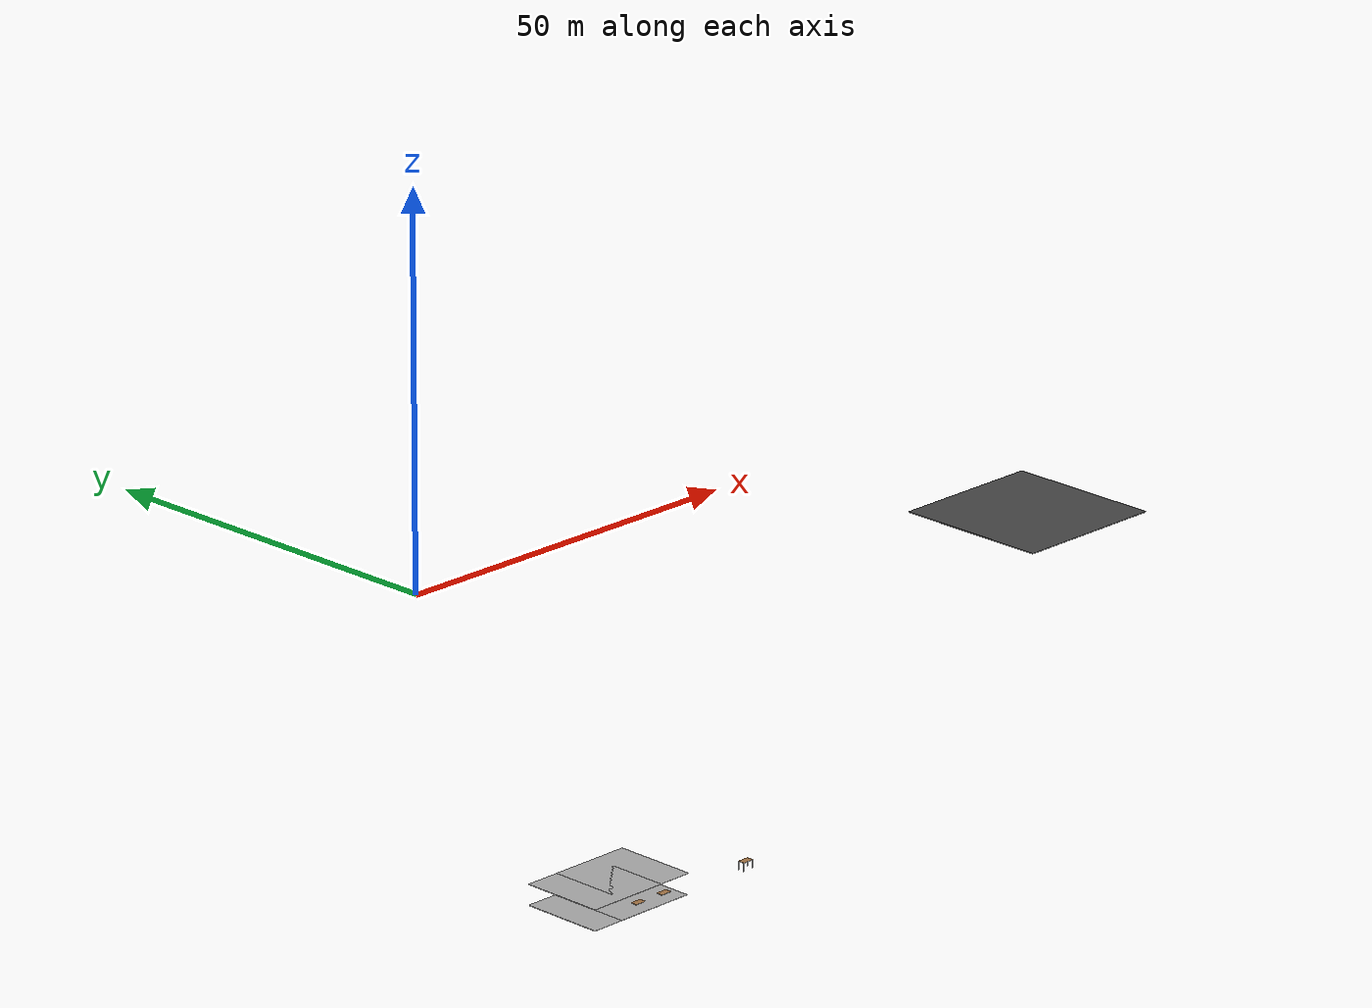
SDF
<sdf version="1.6">
 <world name="default">
  <model name="asphalt_plane">
   <static>1</static>
   <link name="link">
    <collision name="collision"><geometry><box><size>20 20 0.1</size></box></geometry></collision>
    <visual name="visual">
     <cast_shadows>0</cast_shadows>
     <geometry><box><size>20 20 0.1</size></box></geometry>
     <material>
      <script>
       <uri>model://asphalt_plane/materials/scripts</uri>
       <uri>model://asphalt_plane/materials/textures</uri>
       <name>vrc/asphalt</name>
      </script>
     </material>
    </visual>
   </link>
   <pose>70.7475 -31.5972 0 0 -0 0</pose>
  </model>
  <model name="table_4">
   <static>0</static>
   <link name="link">
    <collision name="surface">
     <pose>0 0 1 0 -0 0</pose>
     <geometry><box><size>1.5 0.8 0.03</size></box></geometry>
     <surface><friction><ode><mu>0.6</mu><mu2>0.6</mu2></ode></friction></surface>
    </collision>
    <visual name="visual1">
     <pose>0 0 1 0 -0 0</pose>
     <geometry><box><size>1.4 0.8 0.04</size></box></geometry>
     <material>
      <script><uri>file://media/materials/scripts/gazebo.material</uri><name>Gazebo/Wood</name></script>
     </material>
    </visual>
    <collision name="front_left_leg">
     <pose>0.68 0.38 0.5 0 -0 0</pose>
     <geometry><cylinder><radius>0.02</radius><length>1</length></cylinder></geometry>
    </collision>
    <visual name="front_left_leg">
     <pose>0.68 0.38 0.5 0 -0 0</pose>
     <geometry><cylinder><radius>0.02</radius><length>1</length></cylinder></geometry>
     <material>
      <script>
       <uri>model://office_env/materials/scripts</uri>
       <uri>model://office_env/materials/textures</uri>
       <name>wall</name>
      </script>
     </material>
    </visual>
    <collision name="front_right_leg">
     <pose>0.68 -0.38 0.5 0 -0 0</pose>
     <geometry><cylinder><radius>0.02</radius><length>1</length></cylinder></geometry>
    </collision>
    <visual name="front_right_leg">
     <pose>0.68 -0.38 0.5 0 -0 0</pose>
     <geometry><cylinder><radius>0.02</radius><length>1</length></cylinder></geometry>
     <material>
      <script>
       <uri>model://office_env/materials/scripts</uri>
       <uri>model://office_env/materials/textures</uri>
       <name>wall</name>
      </script>
     </material>
    </visual>
    <collision name="back_right_leg">
     <pose>-0.68 -0.38 0.5 0 -0 0</pose>
     <geometry><cylinder><radius>0.02</radius><length>1</length></cylinder></geometry>
    </collision>
    <visual name="back_right_leg">
     <pose>-0.68 -0.38 0.5 0 -0 0</pose>
     <geometry><cylinder><radius>0.02</radius><length>1</length></cylinder></geometry>
     <material>
      <script>
       <uri>model://office_env/materials/scripts</uri>
       <uri>model://office_env/materials/textures</uri>
       <name>wall</name>
      </script>
     </material>
    </visual>
    <collision name="back_left_leg">
     <pose>-0.68 0.38 0.5 0 -0 0</pose>
     <geometry><cylinder><radius>0.02</radius><length>1</length></cylinder></geometry>
    </collision>
    <visual name="back_left_leg">
     <pose>-0.68 0.38 0.5 0 -0 0</pose>
     <geometry><cylinder><radius>0.02</radius><length>1</length></cylinder></geometry>
     <material>
      <script>
       <uri>model://office_env/materials/scripts</uri>
       <uri>model://office_env/materials/textures</uri>
       <name>wall</name>
      </script>
     </material>
    </visual>
    <inertial>
     <inertia><ixx>1</ixx><ixy>0</ixy><ixz>0</ixz><iyy>1</iyy><iyz>0</iyz><izz>1</izz></inertia>
     <mass>1</mass>
    </inertial>
   </link>
   <pose>-32.5002 -84.6276 0.034993 -2e-06 3e-06 0</pose>
  </model>
  <model name="table_8">
   <static>0</static>
   <link name="link">
    <collision name="surface">
     <pose>0 0 1 0 -0 0</pose>
     <geometry><box><size>1.5 0.8 0.03</size></box></geometry>
     <surface><friction><ode><mu>0.6</mu><mu2>0.6</mu2></ode></friction></surface>
    </collision>
    <visual name="visual1">
     <pose>0 0 1 0 -0 0</pose>
     <geometry><box><size>1.4 0.8 0.04</size></box></geometry>
     <material>
      <script><uri>file://media/materials/scripts/gazebo.material</uri><name>Gazebo/Wood</name></script>
     </material>
    </visual>
    <collision name="front_left_leg">
     <pose>0.68 0.38 0.5 0 -0 0</pose>
     <geometry><cylinder><radius>0.02</radius><length>1</length></cylinder></geometry>
    </collision>
    <visual name="front_left_leg">
     <pose>0.68 0.38 0.5 0 -0 0</pose>
     <geometry><cylinder><radius>0.02</radius><length>1</length></cylinder></geometry>
     <material>
      <script>
       <uri>model://office_env/materials/scripts</uri>
       <uri>model://office_env/materials/textures</uri>
       <name>wall</name>
      </script>
     </material>
    </visual>
    <collision name="front_right_leg">
     <pose>0.68 -0.38 0.5 0 -0 0</pose>
     <geometry><cylinder><radius>0.02</radius><length>1</length></cylinder></geometry>
    </collision>
    <visual name="front_right_leg">
     <pose>0.68 -0.38 0.5 0 -0 0</pose>
     <geometry><cylinder><radius>0.02</radius><length>1</length></cylinder></geometry>
     <material>
      <script>
       <uri>model://office_env/materials/scripts</uri>
       <uri>model://office_env/materials/textures</uri>
       <name>wall</name>
      </script>
     </material>
    </visual>
    <collision name="back_right_leg">
     <pose>-0.68 -0.38 0.5 0 -0 0</pose>
     <geometry><cylinder><radius>0.02</radius><length>1</length></cylinder></geometry>
    </collision>
    <visual name="back_right_leg">
     <pose>-0.68 -0.38 0.5 0 -0 0</pose>
     <geometry><cylinder><radius>0.02</radius><length>1</length></cylinder></geometry>
     <material>
      <script>
       <uri>model://office_env/materials/scripts</uri>
       <uri>model://office_env/materials/textures</uri>
       <name>wall</name>
      </script>
     </material>
    </visual>
    <collision name="back_left_leg">
     <pose>-0.68 0.38 0.5 0 -0 0</pose>
     <geometry><cylinder><radius>0.02</radius><length>1</length></cylinder></geometry>
    </collision>
    <visual name="back_left_leg">
     <pose>-0.68 0.38 0.5 0 -0 0</pose>
     <geometry><cylinder><radius>0.02</radius><length>1</length></cylinder></geometry>
     <material>
      <script>
       <uri>model://office_env/materials/scripts</uri>
       <uri>model://office_env/materials/textures</uri>
       <name>wall</name>
      </script>
     </material>
    </visual>
    <inertial>
     <inertia><ixx>1</ixx><ixy>0</ixy><ixz>0</ixz><iyy>1</iyy><iyz>0</iyz><izz>1</izz></inertia>
     <mass>1</mass>
    </inertial>
   </link>
   <pose>-48.8849 -84.5469 0.034991 0 -0 0</pose>
  </model>
  <model name="table_9">
   <static>0</static>
   <link name="link">
    <collision name="surface">
     <pose>0 0 1 0 -0 0</pose>
     <geometry><box><size>1.5 0.8 0.03</size></box></geometry>
     <surface><friction><ode><mu>0.6</mu><mu2>0.6</mu2></ode></friction></surface>
    </collision>
    <visual name="visual1">
     <pose>0 0 1 0 -0 0</pose>
     <geometry><box><size>1.4 0.8 0.04</size></box></geometry>
     <material>
      <script><uri>file://media/materials/scripts/gazebo.material</uri><name>Gazebo/Wood</name></script>
     </material>
    </visual>
    <collision name="front_left_leg">
     <pose>0.68 0.38 0.5 0 -0 0</pose>
     <geometry><cylinder><radius>0.02</radius><length>1</length></cylinder></geometry>
    </collision>
    <visual name="front_left_leg">
     <pose>0.68 0.38 0.5 0 -0 0</pose>
     <geometry><cylinder><radius>0.02</radius><length>1</length></cylinder></geometry>
     <material>
      <script>
       <uri>model://office_env/materials/scripts</uri>
       <uri>model://office_env/materials/textures</uri>
       <name>wall</name>
      </script>
     </material>
    </visual>
    <collision name="front_right_leg">
     <pose>0.68 -0.38 0.5 0 -0 0</pose>
     <geometry><cylinder><radius>0.02</radius><length>1</length></cylinder></geometry>
    </collision>
    <visual name="front_right_leg">
     <pose>0.68 -0.38 0.5 0 -0 0</pose>
     <geometry><cylinder><radius>0.02</radius><length>1</length></cylinder></geometry>
     <material>
      <script>
       <uri>model://office_env/materials/scripts</uri>
       <uri>model://office_env/materials/textures</uri>
       <name>wall</name>
      </script>
     </material>
    </visual>
    <collision name="back_right_leg">
     <pose>-0.68 -0.38 0.5 0 -0 0</pose>
     <geometry><cylinder><radius>0.02</radius><length>1</length></cylinder></geometry>
    </collision>
    <visual name="back_right_leg">
     <pose>-0.68 -0.38 0.5 0 -0 0</pose>
     <geometry><cylinder><radius>0.02</radius><length>1</length></cylinder></geometry>
     <material>
      <script>
       <uri>model://office_env/materials/scripts</uri>
       <uri>model://office_env/materials/textures</uri>
       <name>wall</name>
      </script>
     </material>
    </visual>
    <collision name="back_left_leg">
     <pose>-0.68 0.38 0.5 0 -0 0</pose>
     <geometry><cylinder><radius>0.02</radius><length>1</length></cylinder></geometry>
    </collision>
    <visual name="back_left_leg">
     <pose>-0.68 0.38 0.5 0 -0 0</pose>
     <geometry><cylinder><radius>0.02</radius><length>1</length></cylinder></geometry>
     <material>
      <script>
       <uri>model://office_env/materials/scripts</uri>
       <uri>model://office_env/materials/textures</uri>
       <name>wall</name>
      </script>
     </material>
    </visual>
    <inertial>
     <inertia><ixx>1</ixx><ixy>0</ixy><ixz>0</ixz><iyy>1</iyy><iyz>0</iyz><izz>1</izz></inertia>
     <mass>1</mass>
    </inertial>
   </link>
   <pose>-45.0488 -84.6021 0.034997 3e-06 -3e-06 0</pose>
  </model>
  <model name="Floor_19">
   <link name="main">
    <pose>0 0 0.01 0 -0 0</pose>
    <collision name="main_Collision"><geometry><box><size>10 10 0.05</size></box></geometry></collision>
    <visual name="main_Visual">
     <geometry><box><size>10 10 0.05</size></box></geometry>
     <material>
      <script>
       <uri>model://Floor_small/materials/scripts</uri>
       <uri>model://Floor_small/materials/textures</uri>
       <name>floor</name>
      </script>
     </material>
    </visual>
   </link>
   <static>1</static>
   <pose>-47.0146 -80.1187 0 0 -0 0</pose>
  </model>
  <model name="Floor_21">
   <link name="main">
    <pose>0 0 0.01 0 -0 0</pose>
    <collision name="main_Collision"><geometry><box><size>10 10 0.05</size></box></geometry></collision>
    <visual name="main_Visual">
     <geometry><box><size>10 10 0.05</size></box></geometry>
     <material>
      <script>
       <uri>model://Floor_small/materials/scripts</uri>
       <uri>model://Floor_small/materials/textures</uri>
       <name>floor</name>
      </script>
     </material>
    </visual>
   </link>
   <static>1</static>
   <pose>-51.0322 -80.1481 0 0 -0 0</pose>
  </model>
  <model name="Floor_3_clone_2">
   <link name="main">
    <pose>0 0 0.01 0 -0 0</pose>
    <collision name="main_Collision"><geometry><box><size>10 10 0.05</size></box></geometry></collision>
    <visual name="main_Visual">
     <geometry><box><size>10 10 0.05</size></box></geometry>
     <material>
      <script>
       <uri>model://Floor_small/materials/scripts</uri>
       <uri>model://Floor_small/materials/textures</uri>
       <name>floor</name>
      </script>
     </material>
    </visual>
   </link>
   <static>1</static>
   <pose>-46.9106 -80.239 2.5 0 -0 0</pose>
  </model>
  <model name="Floor_3_clone_5">
   <link name="main">
    <pose>0 0 0.01 0 -0 0</pose>
    <collision name="main_Collision"><geometry><box><size>10 10 0.05</size></box></geometry></collision>
    <visual name="main_Visual">
     <geometry><box><size>10 10 0.05</size></box></geometry>
     <material>
      <script>
       <uri>model://Floor_small/materials/scripts</uri>
       <uri>model://Floor_small/materials/textures</uri>
       <name>floor</name>
      </script>
     </material>
    </visual>
   </link>
   <static>1</static>
   <pose>-51.1521 -80.2612 2.5 0 -0 0</pose>
  </model>
 </world>
</sdf>
